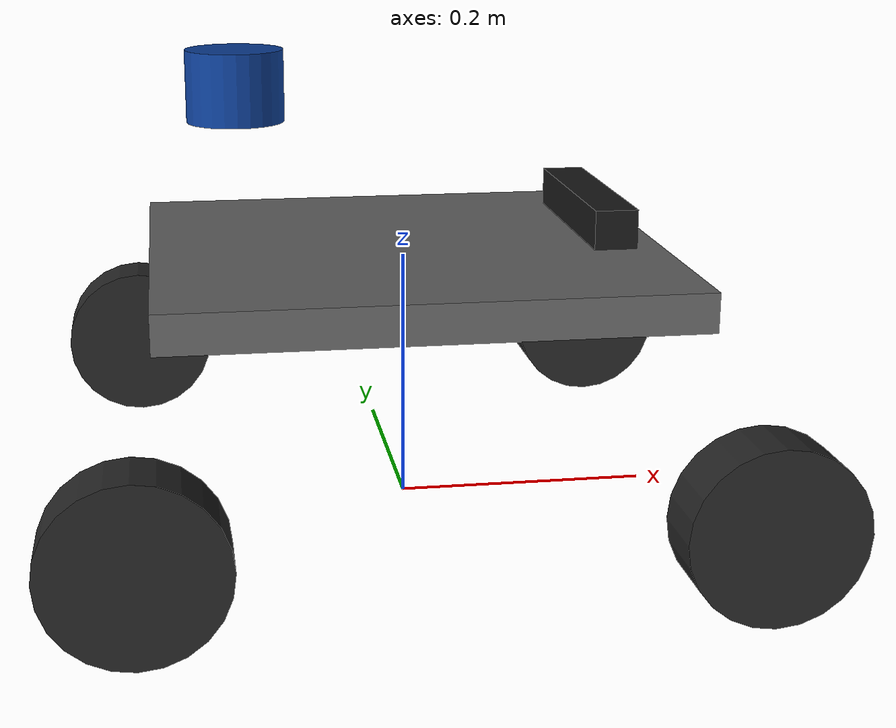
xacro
<?xml version="1.0"?>
<robot xmlns:xacro="http://www.ros.org/wiki/xacro" name="rover">

  <!-- Args mirror the wheeled / tracked robots so launch files can pass them in -->
  <xacro:arg name="use_ros2_control" default="true"/>
  <xacro:arg name="sim_mode"         default="false"/>

  <xacro:include filename="inertial_macros.xacro"/>

  <!-- ========== REAL ROBOT MEASUREMENTS ========== -->
  <!-- Wheels -->
  <xacro:property name="wheel_radius"     value="0.065"/>   <!-- 6.5 cm -->
  <xacro:property name="wheel_width"      value="0.05"/>    <!-- 5 cm -->
  <xacro:property name="wheel_mass"       value="1.0"/>     <!-- kg -->
  <xacro:property name="wheel_separation" value="0.53"/>    <!-- 53 cm, center-to-center (left↔right) -->
  <xacro:property name="wheelbase"        value="0.43"/>    <!-- 43 cm, center-to-center (front↔back) -->

  <!-- Chassis (body box) -->
  <xacro:property name="chassis_length"   value="0.40"/>    <!-- 40 cm -->
  <xacro:property name="chassis_width"    value="0.37"/>    <!-- 37 cm -->
  <xacro:property name="chassis_height"   value="0.03"/>    <!-- 3 cm (thin plate) -->
  <xacro:property name="chassis_mass"     value="6.0"/>     <!-- kg -->
  <!-- Chassis bottom sits 11.5 cm above the wheel-axle plane (= base_link height) -->
  <xacro:property name="chassis_bottom_z" value="0.115"/>
  <xacro:property name="chassis_center_z" value="${chassis_bottom_z + chassis_height/2}"/>

  <!-- Derived: half-distances for wheel joint origins -->
  <xacro:property name="wheel_x" value="${wheelbase/2}"/>
  <xacro:property name="wheel_y" value="${wheel_separation/2}"/>

  <!-- ========== MATERIALS ========== -->
  <material name="chassis_grey"><color rgba="0.4 0.4 0.4 1"/></material>
  <material name="wheel_dark"  ><color rgba="0.15 0.15 0.15 1"/></material>

  <!-- ========== ROOT: base_footprint ========== -->
  <!-- base_footprint sits on the ground (z=0).
       base_link is at the wheel-axle plane (z = wheel_radius). -->
  <link name="base_footprint" />
  <joint name="base_footprint_to_base_link" type="fixed">
    <origin xyz="0 0 ${wheel_radius}" rpy="0 0 0" />
    <parent link="base_footprint" />
    <child link="base_link" />
  </joint>

  <!-- ========== BASE LINK (chassis box) ========== -->
  <link name="base_link">
    <visual>
      <origin xyz="0 0 ${chassis_center_z}" rpy="0 0 0"/>
      <geometry>
        <box size="${chassis_length} ${chassis_width} ${chassis_height}"/>
      </geometry>
      <material name="chassis_grey"/>
    </visual>
    <collision>
      <origin xyz="0 0 ${chassis_center_z}" rpy="0 0 0"/>
      <geometry>
        <box size="${chassis_length} ${chassis_width} ${chassis_height}"/>
      </geometry>
    </collision>
    <xacro:inertial_box mass="${chassis_mass}"
                        x="${chassis_length}" y="${chassis_width}" z="${chassis_height}">
      <origin xyz="0 0 ${chassis_center_z}" rpy="0 0 0"/>
    </xacro:inertial_box>
  </link>

  <!-- ========== WHEEL MACRO ==========
       Wheel cylinder axis is along the wheel y (axle); we rotate it with rpy
       so the cylinder lies horizontally with the axle along the world Y. -->
  <xacro:macro name="wheel" params="prefix x_pos y_pos">
    <link name="${prefix}_wheel_link">
      <visual>
        <origin xyz="0 0 0" rpy="${pi/2} 0 0"/>
        <geometry>
          <cylinder radius="${wheel_radius}" length="${wheel_width}"/>
        </geometry>
        <material name="wheel_dark"/>
      </visual>
      <collision>
        <origin xyz="0 0 0" rpy="${pi/2} 0 0"/>
        <geometry>
          <cylinder radius="${wheel_radius}" length="${wheel_width}"/>
        </geometry>
      </collision>
      <xacro:inertial_cylinder mass="${wheel_mass}"
                               length="${wheel_width}" radius="${wheel_radius}">
        <origin xyz="0 0 0" rpy="${pi/2} 0 0"/>
      </xacro:inertial_cylinder>
    </link>
  </xacro:macro>

  <!-- ========== WHEELS ==========
       Front wheels are the controlled joints (declared in ros2_control).
       Back wheels mimic the front (RViz visualization only). -->
  <xacro:wheel prefix="left_front"  x_pos="${wheel_x}"  y_pos="${wheel_y}"/>
  <xacro:wheel prefix="right_front" x_pos="${wheel_x}"  y_pos="${-wheel_y}"/>
  <xacro:wheel prefix="left_back"   x_pos="${-wheel_x}" y_pos="${wheel_y}"/>
  <xacro:wheel prefix="right_back"  x_pos="${-wheel_x}" y_pos="${-wheel_y}"/>

  <joint name="left_front_wheel_joint" type="continuous">
    <origin xyz="${wheel_x} ${wheel_y} 0"/>
    <parent link="base_link"/><child link="left_front_wheel_link"/>
    <axis xyz="0 1 0"/>
    <limit effort="100" velocity="100"/>
    <dynamics damping="0.1" friction="0.1"/>
  </joint>

  <joint name="right_front_wheel_joint" type="continuous">
    <origin xyz="${wheel_x} ${-wheel_y} 0"/>
    <parent link="base_link"/><child link="right_front_wheel_link"/>
    <axis xyz="0 1 0"/>
    <limit effort="100" velocity="100"/>
    <dynamics damping="0.1" friction="0.1"/>
  </joint>

  <joint name="left_back_wheel_joint" type="continuous">
    <origin xyz="${-wheel_x} ${wheel_y} 0"/>
    <parent link="base_link"/><child link="left_back_wheel_link"/>
    <axis xyz="0 1 0"/>
    <limit effort="100" velocity="100"/>
    <dynamics damping="0.1" friction="0.1"/>
    <mimic joint="left_front_wheel_joint" multiplier="1.0" offset="0"/>
  </joint>

  <joint name="right_back_wheel_joint" type="continuous">
    <origin xyz="${-wheel_x} ${-wheel_y} 0"/>
    <parent link="base_link"/><child link="right_back_wheel_link"/>
    <axis xyz="0 1 0"/>
    <limit effort="100" velocity="100"/>
    <dynamics damping="0.1" friction="0.1"/>
    <mimic joint="right_front_wheel_joint" multiplier="1.0" offset="0"/>
  </joint>

  <!-- ========== ZED 2i mount ========== -->
  <xacro:include filename="zed.xacro"/>

  <!-- ========== RPLidar mount ========== -->
  <xacro:include filename="lidar.xacro"/>

  <!-- TODO: add imu mount once its position is measured -->

  <!-- ========== ros2_control hardware ========== -->
  <xacro:if value="$(arg use_ros2_control)">
      <xacro:include filename="rover_ros2_control.xacro"/>
  </xacro:if>

</robot>

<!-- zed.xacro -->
<robot xmlns:xacro="http://www.ros.org/wiki/xacro">

    <!-- ZED 2i mount position (relative to base_link, which is at wheel-axle height) -->
    <xacro:property name="zed_x" value="0.15"/>
    <xacro:property name="zed_y" value="0.0"/>
    <xacro:property name="zed_z" value="0.17"/>

    <joint name="zed_joint" type="fixed">
        <parent link="base_link"/>
        <child link="zed_camera_link"/>
        <origin xyz="${zed_x} ${zed_y} ${zed_z}" rpy="0 0 0"/>
    </joint>

    <link name="zed_camera_link">
        <visual>
            <geometry>
                <box size="0.033 0.175 0.030"/>
            </geometry>
            <material name="zed_black">
                <color rgba="0.1 0.1 0.1 1"/>
            </material>
        </visual>
    </link>

</robot>

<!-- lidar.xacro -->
<robot xmlns:xacro="http://www.ros.org/wiki/xacro">

  <xacro:property name="lidar_x"      value="-0.13"/>
  <xacro:property name="lidar_y"      value="0.0"/>
  <xacro:property name="lidar_z"      value="0.30"/>   <!-- scan plane height -->
  <xacro:property name="lidar_radius" value="0.0375"/> <!-- 7.5 cm diameter puck -->
  <xacro:property name="lidar_height" value="0.055"/>
  <xacro:property name="lidar_mass"   value="0.19"/>

  <material name="lidar_blue"><color rgba="0.05 0.25 0.6 1"/></material>

  <joint name="lidar_joint" type="fixed">
    <parent link="base_link"/>
    <child  link="lidar_link"/>
    <origin xyz="${lidar_x} ${lidar_y} ${lidar_z}" rpy="0 0 0"/>
  </joint>

  <link name="lidar_link">
    <visual>
      <origin xyz="0 0 ${-lidar_height/2}" rpy="0 0 0"/>
      <geometry>
        <cylinder radius="${lidar_radius}" length="${lidar_height}"/>
      </geometry>
      <material name="lidar_blue"/>
    </visual>
    <collision>
      <origin xyz="0 0 ${-lidar_height/2}" rpy="0 0 0"/>
      <geometry>
        <cylinder radius="${lidar_radius}" length="${lidar_height}"/>
      </geometry>
    </collision>
    <xacro:inertial_cylinder mass="${lidar_mass}"
                             length="${lidar_height}" radius="${lidar_radius}">
      <origin xyz="0 0 ${-lidar_height/2}" rpy="0 0 0"/>
    </xacro:inertial_cylinder>
  </link>

</robot>
